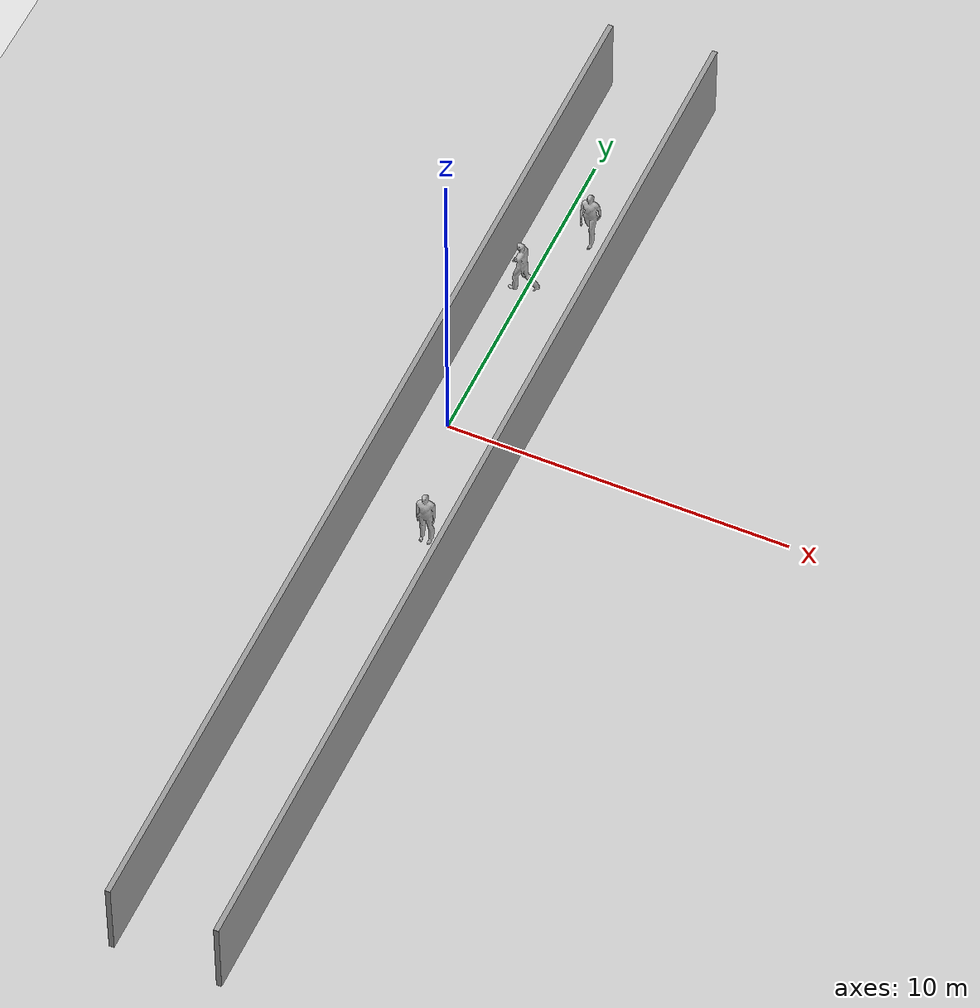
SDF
<sdf version="1.7">
 <world name="default">
  <light name="sun" type="directional">
   <pose>0 0 10 0 -0 0</pose>
   <diffuse>0.8 0.8 0.8 1</diffuse>
   <specular>0.2 0.2 0.2 1</specular>
   <attenuation>
    <range>1000</range>
    <constant>0.9</constant>
    <linear>0.01</linear>
    <quadratic>0.001</quadratic>
   </attenuation>
   <direction>-0.5 0.1 -0.9</direction>
   <spot><inner_angle>0</inner_angle><outer_angle>0</outer_angle><falloff>0</falloff></spot>
  </light>
  <model name="ground_plane">
   <static>1</static>
   <link name="link">
    <collision name="collision">
     <geometry><plane><normal>0 0 1</normal><size>100 100</size></plane></geometry>
     <surface>
      <contact><collide_bitmask>65535</collide_bitmask></contact>
      <friction><ode><mu>100</mu><mu2>50</mu2></ode></friction>
     </surface>
    </collision>
    <visual name="visual">
     <cast_shadows>0</cast_shadows>
     <geometry><plane><normal>0 0 1</normal><size>100 100</size></plane></geometry>
     <material>
      <script><uri>file://media/materials/scripts/gazebo.material</uri><name>Gazebo/Grey</name></script>
     </material>
    </visual>
   </link>
  </model>
  <gravity>0 0 -9.8</gravity>
  <magnetic_field>6e-06 2.3e-05 -4.2e-05</magnetic_field>
  <atmosphere type="adiabatic"/>
  <physics type="ode">
   <max_step_size>0.001</max_step_size>
   <real_time_factor>1</real_time_factor>
   <real_time_update_rate>1000</real_time_update_rate>
  </physics>
  <scene><ambient>0.4 0.4 0.4 1</ambient><background>0.7 0.7 0.7 1</background><shadows>1</shadows></scene>
  <spherical_coordinates>
   <surface_model>EARTH_WGS84</surface_model>
   <latitude_deg>0</latitude_deg>
   <longitude_deg>0</longitude_deg>
   <elevation>0</elevation>
   <heading_deg>0</heading_deg>
  </spherical_coordinates>
  <model name="gazebo_environment_model">
   <pose>0.615985 -2.81941 0 0 -0 0</pose>
   <link name="Wall_10">
    <collision name="Wall_10_Collision">
     <geometry><box><size>32.25 0.15 2.5</size></box></geometry>
     <pose>0 0 1.25 0 -0 0</pose>
    </collision>
    <visual name="Wall_10_Visual">
     <pose>0 0 1.25 0 -0 0</pose>
     <geometry><box><size>32.25 0.15 2.5</size></box></geometry>
     <material>
      <script><uri>file://media/materials/scripts/gazebo.material</uri><name>Gazebo/Grey</name></script>
      <ambient>1 1 1 1</ambient>
     </material>
     <meta><layer>0</layer></meta>
    </visual>
    <pose>1.51405 0.02019 0 0 -0 -1.5708</pose>
   </link>
   <link name="Wall_7">
    <collision name="Wall_7_Collision">
     <geometry><box><size>32 0.15 2.5</size></box></geometry>
     <pose>0 0 1.25 0 -0 0</pose>
    </collision>
    <visual name="Wall_7_Visual">
     <pose>0 0 1.25 0 -0 0</pose>
     <geometry><box><size>32 0.15 2.5</size></box></geometry>
     <material>
      <script><uri>file://media/materials/scripts/gazebo.material</uri><name>Gazebo/Grey</name></script>
      <ambient>1 1 1 1</ambient>
     </material>
     <meta><layer>0</layer></meta>
    </visual>
    <pose>-1.51405 -0.14519 0 0 -0 -1.5708</pose>
   </link>
   <static>1</static>
  </model>
  <model name="person_walking">
   <link name="link">
    <inertial>
     <pose>0 0 0.95 0 -0 0</pose>
     <mass>80</mass>
     <inertia><ixx>27.82</ixx><ixy>0</ixy><ixz>0</ixz><iyy>24.88</iyy><iyz>0</iyz><izz>4.57</izz></inertia>
    </inertial>
    <collision name="bottom">
     <pose>0 0 0.01 0 -0 0</pose>
     <geometry><box><size>0.35 0.75 0.02</size></box></geometry>
    </collision>
    <collision name="person">
     <pose>0 0 -0.02 0 -0 0</pose>
     <geometry><mesh><uri>model://person_walking/meshes/walking.dae</uri></mesh></geometry>
    </collision>
    <visual name="visual">
     <pose>0 0 -0.02 0 -0 0</pose>
     <geometry><mesh><uri>model://person_walking/meshes/walking.dae</uri></mesh></geometry>
    </visual>
   </link>
   <pose>0.874449 7.63813 0 -1e-06 -0 1e-06</pose>
  </model>
  <model name="person_standing">
   <link name="link">
    <inertial>
     <pose>0 -0.1 0.95 0 -0 0</pose>
     <mass>80</mass>
     <inertia><ixx>24.88</ixx><ixy>0</ixy><ixz>0</ixz><iyy>25.73</iyy><iyz>0</iyz><izz>2.48</izz></inertia>
    </inertial>
    <collision name="bottom">
     <pose>0 -0.1 0.01 0 -0 0</pose>
     <geometry><box><size>0.5 0.35 0.02</size></box></geometry>
    </collision>
    <collision name="person">
     <pose>0 0 0.02 0.04 -0 0</pose>
     <geometry><mesh><uri>model://person_standing/meshes/standing.dae</uri></mesh></geometry>
    </collision>
    <visual name="visual">
     <pose>0 0 0.02 0.04 -0 0</pose>
     <geometry><mesh><uri>model://person_standing/meshes/standing.dae</uri></mesh></geometry>
    </visual>
   </link>
   <pose>1.04129 -3.65179 0 1e-06 1e-06 -0.000136</pose>
  </model>
  <model name="person_walking_0">
   <link name="link">
    <inertial>
     <pose>0 0 0.95 0 -0 0</pose>
     <mass>80</mass>
     <inertia><ixx>27.82</ixx><ixy>0</ixy><ixz>0</ixz><iyy>24.88</iyy><iyz>0</iyz><izz>4.57</izz></inertia>
    </inertial>
    <collision name="bottom">
     <pose>0 0 0.01 0 -0 0</pose>
     <geometry><box><size>0.35 0.75 0.02</size></box></geometry>
    </collision>
    <collision name="person">
     <pose>0 0 -0.02 0 -0 0</pose>
     <geometry><mesh><uri>model://person_walking/meshes/walking.dae</uri></mesh></geometry>
    </collision>
    <visual name="visual">
     <pose>0 0 -0.02 0 -0 0</pose>
     <geometry><mesh><uri>model://person_walking/meshes/walking.dae</uri></mesh></geometry>
    </visual>
   </link>
   <pose>-0.104718 5.22945 0 1e-06 -0 -1.65743</pose>
  </model>
 </world>
</sdf>
